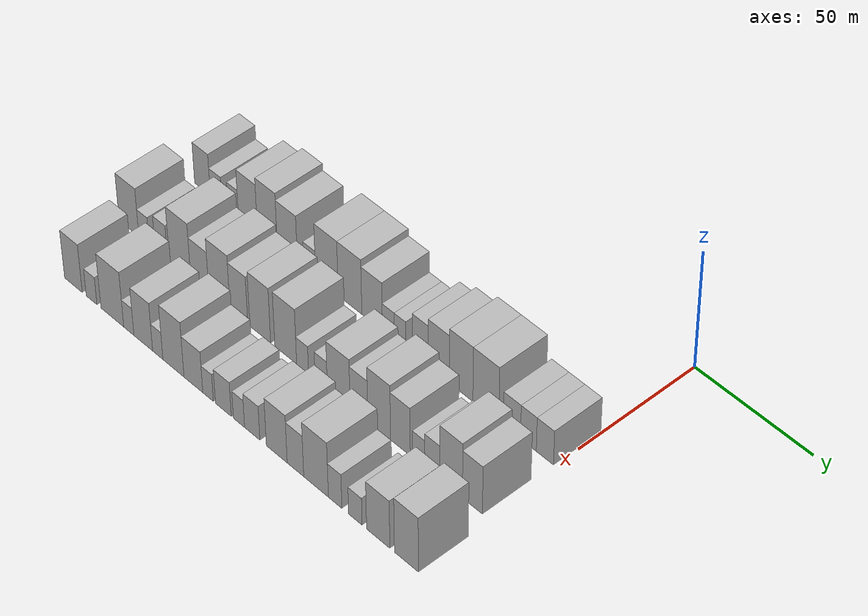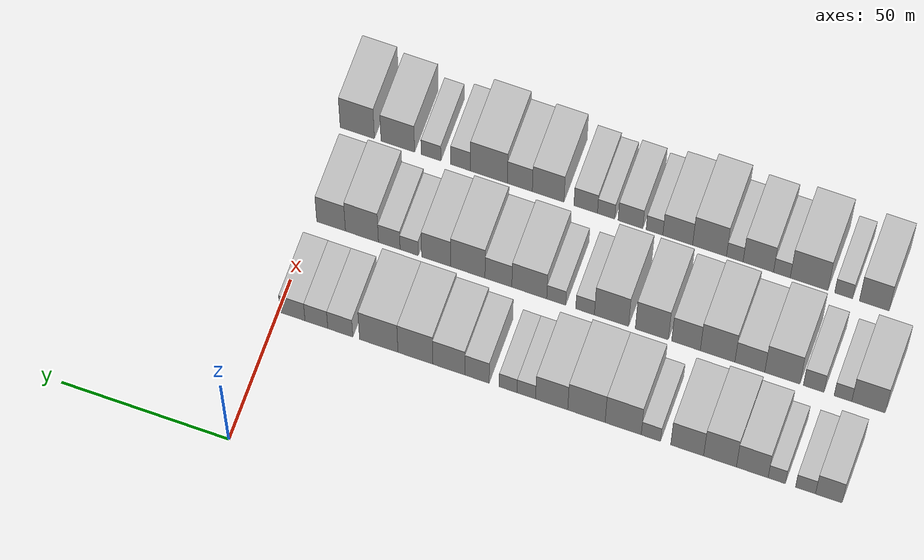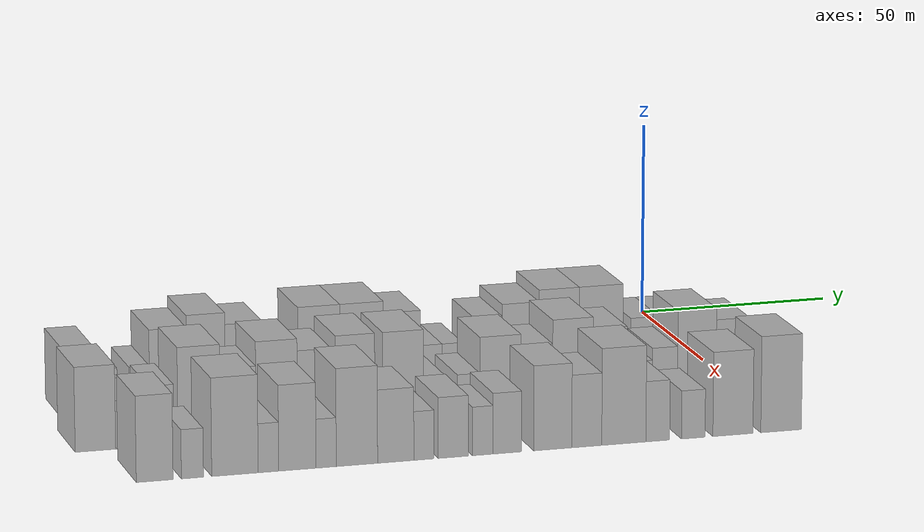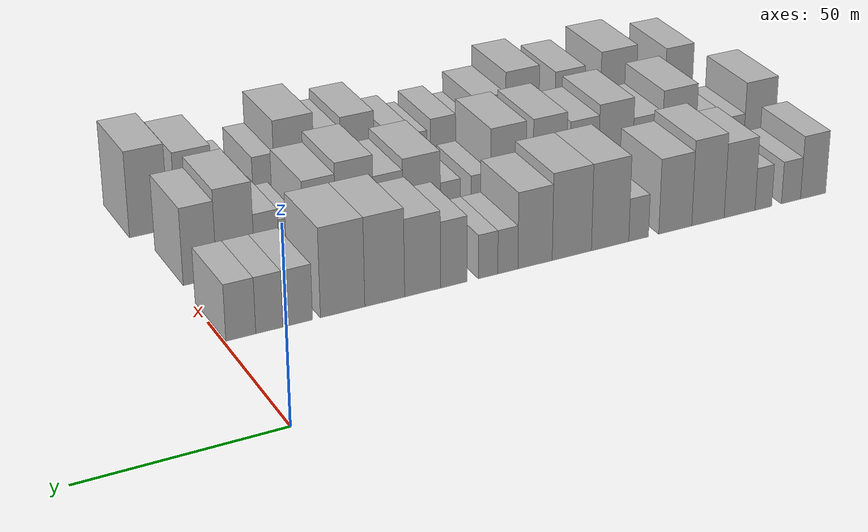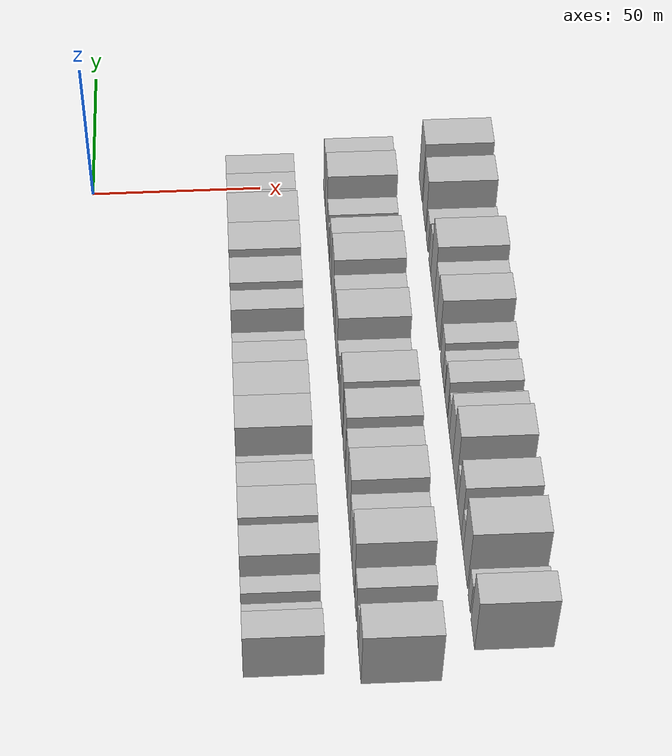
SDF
<sdf version="1.6">
 <world name="default">
  <model name="building_21">
   <static>1</static>
   <pose>50.0000 -163.6512 0 0.000000 0.000000 0.000000</pose>
   <link name="link">
    <pose>0 0 9.00 0 0 0</pose>
    <collision name="collision"><geometry><box><size>20.0000 7.8137 18.0000</size></box></geometry></collision>
    <visual name="visual">
     <cast_shadows>0</cast_shadows>
     <geometry><box><size>20.0000 7.8137 18.0000</size></box></geometry>
     <material>
      <script>
       <uri>model://HANNAS_wall/materials/scripts</uri>
       <uri>model://HANNAS_wall/materials/textures</uri>
       <name>vrc/HANNAS_wall</name>
      </script>
     </material>
    </visual>
   </link>
  </model>
  <model name="building_22">
   <static>1</static>
   <pose>50.0000 -156.8020 0 0.000000 0.000000 0.000000</pose>
   <link name="link">
    <pose>0 0 6.00 0 0 0</pose>
    <collision name="collision"><geometry><box><size>20.0000 5.8847 12.0000</size></box></geometry></collision>
    <visual name="visual">
     <cast_shadows>0</cast_shadows>
     <geometry><box><size>20.0000 5.8847 12.0000</size></box></geometry>
     <material>
      <script>
       <uri>model://HANNAS_wall/materials/scripts</uri>
       <uri>model://HANNAS_wall/materials/textures</uri>
       <name>vrc/HANNAS_wall</name>
      </script>
     </material>
    </visual>
   </link>
  </model>
  <model name="building_23">
   <static>1</static>
   <pose>50.0000 -148.3173 0 0.000000 0.000000 0.000000</pose>
   <link name="link">
    <pose>0 0 6.00 0 0 0</pose>
    <collision name="collision"><geometry><box><size>20.0000 5.0847 12.0000</size></box></geometry></collision>
    <visual name="visual">
     <cast_shadows>0</cast_shadows>
     <geometry><box><size>20.0000 5.0847 12.0000</size></box></geometry>
     <material>
      <script>
       <uri>model://HANNAS_wall/materials/scripts</uri>
       <uri>model://HANNAS_wall/materials/textures</uri>
       <name>vrc/HANNAS_wall</name>
      </script>
     </material>
    </visual>
   </link>
  </model>
  <model name="building_24">
   <static>1</static>
   <pose>50.0000 -141.1029 0 0.000000 0.000000 0.000000</pose>
   <link name="link">
    <pose>0 0 10.50 0 0 0</pose>
    <collision name="collision"><geometry><box><size>20.0000 9.3441 21.0000</size></box></geometry></collision>
    <visual name="visual">
     <cast_shadows>0</cast_shadows>
     <geometry><box><size>20.0000 9.3441 21.0000</size></box></geometry>
     <material>
      <script>
       <uri>model://HANNAS_wall/materials/scripts</uri>
       <uri>model://HANNAS_wall/materials/textures</uri>
       <name>vrc/HANNAS_wall</name>
      </script>
     </material>
    </visual>
   </link>
  </model>
  <model name="building_25">
   <static>1</static>
   <pose>50.0000 -131.5984 0 0.000000 0.000000 0.000000</pose>
   <link name="link">
    <pose>0 0 12.00 0 0 0</pose>
    <collision name="collision"><geometry><box><size>20.0000 9.6648 24.0000</size></box></geometry></collision>
    <visual name="visual">
     <cast_shadows>0</cast_shadows>
     <geometry><box><size>20.0000 9.6648 24.0000</size></box></geometry>
     <material>
      <script>
       <uri>model://HANNAS_wall/materials/scripts</uri>
       <uri>model://HANNAS_wall/materials/textures</uri>
       <name>vrc/HANNAS_wall</name>
      </script>
     </material>
    </visual>
   </link>
  </model>
  <model name="building_26">
   <static>1</static>
   <pose>50.0000 -121.9119 0 0.000000 0.000000 0.000000</pose>
   <link name="link">
    <pose>0 0 10.50 0 0 0</pose>
    <collision name="collision"><geometry><box><size>20.0000 9.7083 21.0000</size></box></geometry></collision>
    <visual name="visual">
     <cast_shadows>0</cast_shadows>
     <geometry><box><size>20.0000 9.7083 21.0000</size></box></geometry>
     <material>
      <script>
       <uri>model://HANNAS_wall/materials/scripts</uri>
       <uri>model://HANNAS_wall/materials/textures</uri>
       <name>vrc/HANNAS_wall</name>
      </script>
     </material>
    </visual>
   </link>
  </model>
  <model name="building_27">
   <static>1</static>
   <pose>50.0000 -111.1926 0 0.000000 0.000000 0.000000</pose>
   <link name="link">
    <pose>0 0 6.00 0 0 0</pose>
    <collision name="collision"><geometry><box><size>20.0000 5.7304 12.0000</size></box></geometry></collision>
    <visual name="visual">
     <cast_shadows>0</cast_shadows>
     <geometry><box><size>20.0000 5.7304 12.0000</size></box></geometry>
     <material>
      <script>
       <uri>model://HANNAS_wall/materials/scripts</uri>
       <uri>model://HANNAS_wall/materials/textures</uri>
       <name>vrc/HANNAS_wall</name>
      </script>
     </material>
    </visual>
   </link>
  </model>
  <model name="building_28">
   <static>1</static>
   <pose>50.0000 -102.9746 0 0.000000 0.000000 0.000000</pose>
   <link name="link">
    <pose>0 0 12.00 0 0 0</pose>
    <collision name="collision"><geometry><box><size>20.0000 10.7056 24.0000</size></box></geometry></collision>
    <visual name="visual">
     <cast_shadows>0</cast_shadows>
     <geometry><box><size>20.0000 10.7056 24.0000</size></box></geometry>
     <material>
      <script>
       <uri>model://HANNAS_wall/materials/scripts</uri>
       <uri>model://HANNAS_wall/materials/textures</uri>
       <name>vrc/HANNAS_wall</name>
      </script>
     </material>
    </visual>
   </link>
  </model>
  <model name="building_29">
   <static>1</static>
   <pose>50.0000 -92.0782 0 0.000000 0.000000 0.000000</pose>
   <link name="link">
    <pose>0 0 12.00 0 0 0</pose>
    <collision name="collision"><geometry><box><size>20.0000 11.0870 24.0000</size></box></geometry></collision>
    <visual name="visual">
     <cast_shadows>0</cast_shadows>
     <geometry><box><size>20.0000 11.0870 24.0000</size></box></geometry>
     <material>
      <script>
       <uri>model://HANNAS_wall/materials/scripts</uri>
       <uri>model://HANNAS_wall/materials/textures</uri>
       <name>vrc/HANNAS_wall</name>
      </script>
     </material>
    </visual>
   </link>
  </model>
  <model name="building_30">
   <static>1</static>
   <pose>50.0000 -81.7532 0 0.000000 0.000000 0.000000</pose>
   <link name="link">
    <pose>0 0 10.50 0 0 0</pose>
    <collision name="collision"><geometry><box><size>20.0000 9.5631 21.0000</size></box></geometry></collision>
    <visual name="visual">
     <cast_shadows>0</cast_shadows>
     <geometry><box><size>20.0000 9.5631 21.0000</size></box></geometry>
     <material>
      <script>
       <uri>model://HANNAS_wall/materials/scripts</uri>
       <uri>model://HANNAS_wall/materials/textures</uri>
       <name>vrc/HANNAS_wall</name>
      </script>
     </material>
    </visual>
   </link>
  </model>
  <model name="building_31">
   <static>1</static>
   <pose>50.0000 -74.2111 0 0.000000 0.000000 0.000000</pose>
   <link name="link">
    <pose>0 0 6.00 0 0 0</pose>
    <collision name="collision"><geometry><box><size>20.0000 5.5211 12.0000</size></box></geometry></collision>
    <visual name="visual">
     <cast_shadows>0</cast_shadows>
     <geometry><box><size>20.0000 5.5211 12.0000</size></box></geometry>
     <material>
      <script>
       <uri>model://HANNAS_wall/materials/scripts</uri>
       <uri>model://HANNAS_wall/materials/textures</uri>
       <name>vrc/HANNAS_wall</name>
      </script>
     </material>
    </visual>
   </link>
  </model>
  <model name="building_32">
   <static>1</static>
   <pose>50.0000 -68.8047 0 0.000000 0.000000 0.000000</pose>
   <link name="link">
    <pose>0 0 6.00 0 0 0</pose>
    <collision name="collision"><geometry><box><size>20.0000 5.2918 12.0000</size></box></geometry></collision>
    <visual name="visual">
     <cast_shadows>0</cast_shadows>
     <geometry><box><size>20.0000 5.2918 12.0000</size></box></geometry>
     <material>
      <script>
       <uri>model://HANNAS_wall/materials/scripts</uri>
       <uri>model://HANNAS_wall/materials/textures</uri>
       <name>vrc/HANNAS_wall</name>
      </script>
     </material>
    </visual>
   </link>
  </model>
  <model name="building_33">
   <static>1</static>
   <pose>50.0000 -59.5514 0 0.000000 0.000000 0.000000</pose>
   <link name="link">
    <pose>0 0 9.00 0 0 0</pose>
    <collision name="collision"><geometry><box><size>20.0000 7.2146 18.0000</size></box></geometry></collision>
    <visual name="visual">
     <cast_shadows>0</cast_shadows>
     <geometry><box><size>20.0000 7.2146 18.0000</size></box></geometry>
     <material>
      <script>
       <uri>model://HANNAS_wall/materials/scripts</uri>
       <uri>model://HANNAS_wall/materials/textures</uri>
       <name>vrc/HANNAS_wall</name>
      </script>
     </material>
    </visual>
   </link>
  </model>
  <model name="building_34">
   <static>1</static>
   <pose>50.0000 -51.1567 0 0.000000 0.000000 0.000000</pose>
   <link name="link">
    <pose>0 0 10.50 0 0 0</pose>
    <collision name="collision"><geometry><box><size>20.0000 9.5748 21.0000</size></box></geometry></collision>
    <visual name="visual">
     <cast_shadows>0</cast_shadows>
     <geometry><box><size>20.0000 9.5748 21.0000</size></box></geometry>
     <material>
      <script>
       <uri>model://HANNAS_wall/materials/scripts</uri>
       <uri>model://HANNAS_wall/materials/textures</uri>
       <name>vrc/HANNAS_wall</name>
      </script>
     </material>
    </visual>
   </link>
  </model>
  <model name="building_35">
   <static>1</static>
   <pose>50.0000 -41.1440 0 0.000000 0.000000 0.000000</pose>
   <link name="link">
    <pose>0 0 12.00 0 0 0</pose>
    <collision name="collision"><geometry><box><size>20.0000 10.4507 24.0000</size></box></geometry></collision>
    <visual name="visual">
     <cast_shadows>0</cast_shadows>
     <geometry><box><size>20.0000 10.4507 24.0000</size></box></geometry>
     <material>
      <script>
       <uri>model://HANNAS_wall/materials/scripts</uri>
       <uri>model://HANNAS_wall/materials/textures</uri>
       <name>vrc/HANNAS_wall</name>
      </script>
     </material>
    </visual>
   </link>
  </model>
  <model name="building_36">
   <static>1</static>
   <pose>50.0000 -30.1692 0 0.000000 0.000000 0.000000</pose>
   <link name="link">
    <pose>0 0 12.00 0 0 0</pose>
    <collision name="collision"><geometry><box><size>20.0000 11.4988 24.0000</size></box></geometry></collision>
    <visual name="visual">
     <cast_shadows>0</cast_shadows>
     <geometry><box><size>20.0000 11.4988 24.0000</size></box></geometry>
     <material>
      <script>
       <uri>model://HANNAS_wall/materials/scripts</uri>
       <uri>model://HANNAS_wall/materials/textures</uri>
       <name>vrc/HANNAS_wall</name>
      </script>
     </material>
    </visual>
   </link>
  </model>
  <model name="building_37">
   <static>1</static>
   <pose>50.0000 -18.6706 0 0.000000 0.000000 0.000000</pose>
   <link name="link">
    <pose>0 0 7.50 0 0 0</pose>
    <collision name="collision"><geometry><box><size>20.0000 7.4985 15.0000</size></box></geometry></collision>
    <visual name="visual">
     <cast_shadows>0</cast_shadows>
     <geometry><box><size>20.0000 7.4985 15.0000</size></box></geometry>
     <material>
      <script>
       <uri>model://HANNAS_wall/materials/scripts</uri>
       <uri>model://HANNAS_wall/materials/textures</uri>
       <name>vrc/HANNAS_wall</name>
      </script>
     </material>
    </visual>
   </link>
  </model>
  <model name="building_38">
   <static>1</static>
   <pose>50.0000 -11.4941 0 0.000000 0.000000 0.000000</pose>
   <link name="link">
    <pose>0 0 7.50 0 0 0</pose>
    <collision name="collision"><geometry><box><size>20.0000 6.8543 15.0000</size></box></geometry></collision>
    <visual name="visual">
     <cast_shadows>0</cast_shadows>
     <geometry><box><size>20.0000 6.8543 15.0000</size></box></geometry>
     <material>
      <script>
       <uri>model://HANNAS_wall/materials/scripts</uri>
       <uri>model://HANNAS_wall/materials/textures</uri>
       <name>vrc/HANNAS_wall</name>
      </script>
     </material>
    </visual>
   </link>
  </model>
  <model name="building_39">
   <static>1</static>
   <pose>50.0000 -4.3463 0 0.000000 0.000000 0.000000</pose>
   <link name="link">
    <pose>0 0 7.50 0 0 0</pose>
    <collision name="collision"><geometry><box><size>20.0000 7.4413 15.0000</size></box></geometry></collision>
    <visual name="visual">
     <cast_shadows>0</cast_shadows>
     <geometry><box><size>20.0000 7.4413 15.0000</size></box></geometry>
     <material>
      <script>
       <uri>model://HANNAS_wall/materials/scripts</uri>
       <uri>model://HANNAS_wall/materials/textures</uri>
       <name>vrc/HANNAS_wall</name>
      </script>
     </material>
    </visual>
   </link>
  </model>
  <model name="building_94">
   <static>1</static>
   <pose>79.0000 -165.7490 0 0.000000 0.000000 0.000000</pose>
   <link name="link">
    <pose>0 0 10.50 0 0 0</pose>
    <collision name="collision"><geometry><box><size>20.0000 9.8896 21.0000</size></box></geometry></collision>
    <visual name="visual">
     <cast_shadows>0</cast_shadows>
     <geometry><box><size>20.0000 9.8896 21.0000</size></box></geometry>
     <material>
      <script>
       <uri>model://HANNAS_wall/materials/scripts</uri>
       <uri>model://HANNAS_wall/materials/textures</uri>
       <name>vrc/HANNAS_wall</name>
      </script>
     </material>
    </visual>
   </link>
  </model>
  <model name="building_95">
   <static>1</static>
   <pose>79.0000 -158.2054 0 0.000000 0.000000 0.000000</pose>
   <link name="link">
    <pose>0 0 6.00 0 0 0</pose>
    <collision name="collision"><geometry><box><size>20.0000 5.1976 12.0000</size></box></geometry></collision>
    <visual name="visual">
     <cast_shadows>0</cast_shadows>
     <geometry><box><size>20.0000 5.1976 12.0000</size></box></geometry>
     <material>
      <script>
       <uri>model://HANNAS_wall/materials/scripts</uri>
       <uri>model://HANNAS_wall/materials/textures</uri>
       <name>vrc/HANNAS_wall</name>
      </script>
     </material>
    </visual>
   </link>
  </model>
  <model name="building_96">
   <static>1</static>
   <pose>79.0000 -149.5529 0 0.000000 0.000000 0.000000</pose>
   <link name="link">
    <pose>0 0 7.50 0 0 0</pose>
    <collision name="collision"><geometry><box><size>20.0000 6.1075 15.0000</size></box></geometry></collision>
    <visual name="visual">
     <cast_shadows>0</cast_shadows>
     <geometry><box><size>20.0000 6.1075 15.0000</size></box></geometry>
     <material>
      <script>
       <uri>model://HANNAS_wall/materials/scripts</uri>
       <uri>model://HANNAS_wall/materials/textures</uri>
       <name>vrc/HANNAS_wall</name>
      </script>
     </material>
    </visual>
   </link>
  </model>
  <model name="building_97">
   <static>1</static>
   <pose>79.0000 -140.2811 0 0.000000 0.000000 0.000000</pose>
   <link name="link">
    <pose>0 0 12.00 0 0 0</pose>
    <collision name="collision"><geometry><box><size>20.0000 10.4362 24.0000</size></box></geometry></collision>
    <visual name="visual">
     <cast_shadows>0</cast_shadows>
     <geometry><box><size>20.0000 10.4362 24.0000</size></box></geometry>
     <material>
      <script>
       <uri>model://HANNAS_wall/materials/scripts</uri>
       <uri>model://HANNAS_wall/materials/textures</uri>
       <name>vrc/HANNAS_wall</name>
      </script>
     </material>
    </visual>
   </link>
  </model>
  <model name="building_98">
   <static>1</static>
   <pose>79.0000 -130.6307 0 0.000000 0.000000 0.000000</pose>
   <link name="link">
    <pose>0 0 9.00 0 0 0</pose>
    <collision name="collision"><geometry><box><size>20.0000 8.8647 18.0000</size></box></geometry></collision>
    <visual name="visual">
     <cast_shadows>0</cast_shadows>
     <geometry><box><size>20.0000 8.8647 18.0000</size></box></geometry>
     <material>
      <script>
       <uri>model://HANNAS_wall/materials/scripts</uri>
       <uri>model://HANNAS_wall/materials/textures</uri>
       <name>vrc/HANNAS_wall</name>
      </script>
     </material>
    </visual>
   </link>
  </model>
  <model name="building_99">
   <static>1</static>
   <pose>79.0000 -121.0597 0 0.000000 0.000000 0.000000</pose>
   <link name="link">
    <pose>0 0 12.00 0 0 0</pose>
    <collision name="collision"><geometry><box><size>20.0000 10.2773 24.0000</size></box></geometry></collision>
    <visual name="visual">
     <cast_shadows>0</cast_shadows>
     <geometry><box><size>20.0000 10.2773 24.0000</size></box></geometry>
     <material>
      <script>
       <uri>model://HANNAS_wall/materials/scripts</uri>
       <uri>model://HANNAS_wall/materials/textures</uri>
       <name>vrc/HANNAS_wall</name>
      </script>
     </material>
    </visual>
   </link>
  </model>
  <model name="building_100">
   <static>1</static>
   <pose>79.0000 -111.6714 0 0.000000 0.000000 0.000000</pose>
   <link name="link">
    <pose>0 0 10.50 0 0 0</pose>
    <collision name="collision"><geometry><box><size>20.0000 8.4993 21.0000</size></box></geometry></collision>
    <visual name="visual">
     <cast_shadows>0</cast_shadows>
     <geometry><box><size>20.0000 8.4993 21.0000</size></box></geometry>
     <material>
      <script>
       <uri>model://HANNAS_wall/materials/scripts</uri>
       <uri>model://HANNAS_wall/materials/textures</uri>
       <name>vrc/HANNAS_wall</name>
      </script>
     </material>
    </visual>
   </link>
  </model>
  <model name="building_101">
   <static>1</static>
   <pose>79.0000 -101.5051 0 0.000000 0.000000 0.000000</pose>
   <link name="link">
    <pose>0 0 12.00 0 0 0</pose>
    <collision name="collision"><geometry><box><size>20.0000 9.8333 24.0000</size></box></geometry></collision>
    <visual name="visual">
     <cast_shadows>0</cast_shadows>
     <geometry><box><size>20.0000 9.8333 24.0000</size></box></geometry>
     <material>
      <script>
       <uri>model://HANNAS_wall/materials/scripts</uri>
       <uri>model://HANNAS_wall/materials/textures</uri>
       <name>vrc/HANNAS_wall</name>
      </script>
     </material>
    </visual>
   </link>
  </model>
  <model name="building_102">
   <static>1</static>
   <pose>79.0000 -89.4854 0 0.000000 0.000000 0.000000</pose>
   <link name="link">
    <pose>0 0 12.00 0 0 0</pose>
    <collision name="collision"><geometry><box><size>20.0000 10.2059 24.0000</size></box></geometry></collision>
    <visual name="visual">
     <cast_shadows>0</cast_shadows>
     <geometry><box><size>20.0000 10.2059 24.0000</size></box></geometry>
     <material>
      <script>
       <uri>model://HANNAS_wall/materials/scripts</uri>
       <uri>model://HANNAS_wall/materials/textures</uri>
       <name>vrc/HANNAS_wall</name>
      </script>
     </material>
    </visual>
   </link>
  </model>
  <model name="building_103">
   <static>1</static>
   <pose>79.0000 -81.5985 0 0.000000 0.000000 0.000000</pose>
   <link name="link">
    <pose>0 0 6.00 0 0 0</pose>
    <collision name="collision"><geometry><box><size>20.0000 5.5680 12.0000</size></box></geometry></collision>
    <visual name="visual">
     <cast_shadows>0</cast_shadows>
     <geometry><box><size>20.0000 5.5680 12.0000</size></box></geometry>
     <material>
      <script>
       <uri>model://HANNAS_wall/materials/scripts</uri>
       <uri>model://HANNAS_wall/materials/textures</uri>
       <name>vrc/HANNAS_wall</name>
      </script>
     </material>
    </visual>
   </link>
  </model>
  <model name="building_104">
   <static>1</static>
   <pose>79.0000 -72.9741 0 0.000000 0.000000 0.000000</pose>
   <link name="link">
    <pose>0 0 6.00 0 0 0</pose>
    <collision name="collision"><geometry><box><size>20.0000 5.6808 12.0000</size></box></geometry></collision>
    <visual name="visual">
     <cast_shadows>0</cast_shadows>
     <geometry><box><size>20.0000 5.6808 12.0000</size></box></geometry>
     <material>
      <script>
       <uri>model://HANNAS_wall/materials/scripts</uri>
       <uri>model://HANNAS_wall/materials/textures</uri>
       <name>vrc/HANNAS_wall</name>
      </script>
     </material>
    </visual>
   </link>
  </model>
  <model name="building_105">
   <static>1</static>
   <pose>79.0000 -64.9099 0 0.000000 0.000000 0.000000</pose>
   <link name="link">
    <pose>0 0 10.50 0 0 0</pose>
    <collision name="collision"><geometry><box><size>20.0000 10.4476 21.0000</size></box></geometry></collision>
    <visual name="visual">
     <cast_shadows>0</cast_shadows>
     <geometry><box><size>20.0000 10.4476 21.0000</size></box></geometry>
     <material>
      <script>
       <uri>model://HANNAS_wall/materials/scripts</uri>
       <uri>model://HANNAS_wall/materials/textures</uri>
       <name>vrc/HANNAS_wall</name>
      </script>
     </material>
    </visual>
   </link>
  </model>
  <model name="building_106">
   <static>1</static>
   <pose>79.0000 -55.6580 0 0.000000 0.000000 0.000000</pose>
   <link name="link">
    <pose>0 0 9.00 0 0 0</pose>
    <collision name="collision"><geometry><box><size>20.0000 8.0562 18.0000</size></box></geometry></collision>
    <visual name="visual">
     <cast_shadows>0</cast_shadows>
     <geometry><box><size>20.0000 8.0562 18.0000</size></box></geometry>
     <material>
      <script>
       <uri>model://HANNAS_wall/materials/scripts</uri>
       <uri>model://HANNAS_wall/materials/textures</uri>
       <name>vrc/HANNAS_wall</name>
      </script>
     </material>
    </visual>
   </link>
  </model>
  <model name="building_107">
   <static>1</static>
   <pose>79.0000 -46.4918 0 0.000000 0.000000 0.000000</pose>
   <link name="link">
    <pose>0 0 12.00 0 0 0</pose>
    <collision name="collision"><geometry><box><size>20.0000 10.2764 24.0000</size></box></geometry></collision>
    <visual name="visual">
     <cast_shadows>0</cast_shadows>
     <geometry><box><size>20.0000 10.2764 24.0000</size></box></geometry>
     <material>
      <script>
       <uri>model://HANNAS_wall/materials/scripts</uri>
       <uri>model://HANNAS_wall/materials/textures</uri>
       <name>vrc/HANNAS_wall</name>
      </script>
     </material>
    </visual>
   </link>
  </model>
  <model name="building_108">
   <static>1</static>
   <pose>79.0000 -36.9700 0 0.000000 0.000000 0.000000</pose>
   <link name="link">
    <pose>0 0 10.50 0 0 0</pose>
    <collision name="collision"><geometry><box><size>20.0000 8.7671 21.0000</size></box></geometry></collision>
    <visual name="visual">
     <cast_shadows>0</cast_shadows>
     <geometry><box><size>20.0000 8.7671 21.0000</size></box></geometry>
     <material>
      <script>
       <uri>model://HANNAS_wall/materials/scripts</uri>
       <uri>model://HANNAS_wall/materials/textures</uri>
       <name>vrc/HANNAS_wall</name>
      </script>
     </material>
    </visual>
   </link>
  </model>
  <model name="building_109">
   <static>1</static>
   <pose>79.0000 -28.8429 0 0.000000 0.000000 0.000000</pose>
   <link name="link">
    <pose>0 0 6.00 0 0 0</pose>
    <collision name="collision"><geometry><box><size>20.0000 5.4872 12.0000</size></box></geometry></collision>
    <visual name="visual">
     <cast_shadows>0</cast_shadows>
     <geometry><box><size>20.0000 5.4872 12.0000</size></box></geometry>
     <material>
      <script>
       <uri>model://HANNAS_wall/materials/scripts</uri>
       <uri>model://HANNAS_wall/materials/textures</uri>
       <name>vrc/HANNAS_wall</name>
      </script>
     </material>
    </visual>
   </link>
  </model>
  <model name="building_110">
   <static>1</static>
   <pose>79.0000 -22.8388 0 0.000000 0.000000 0.000000</pose>
   <link name="link">
    <pose>0 0 7.50 0 0 0</pose>
    <collision name="collision"><geometry><box><size>20.0000 6.5210 15.0000</size></box></geometry></collision>
    <visual name="visual">
     <cast_shadows>0</cast_shadows>
     <geometry><box><size>20.0000 6.5210 15.0000</size></box></geometry>
     <material>
      <script>
       <uri>model://HANNAS_wall/materials/scripts</uri>
       <uri>model://HANNAS_wall/materials/textures</uri>
       <name>vrc/HANNAS_wall</name>
      </script>
     </material>
    </visual>
   </link>
  </model>
  <model name="building_111">
   <static>1</static>
   <pose>79.0000 -14.6055 0 0.000000 0.000000 0.000000</pose>
   <link name="link">
    <pose>0 0 12.00 0 0 0</pose>
    <collision name="collision"><geometry><box><size>20.0000 9.9457 24.0000</size></box></geometry></collision>
    <visual name="visual">
     <cast_shadows>0</cast_shadows>
     <geometry><box><size>20.0000 9.9457 24.0000</size></box></geometry>
     <material>
      <script>
       <uri>model://HANNAS_wall/materials/scripts</uri>
       <uri>model://HANNAS_wall/materials/textures</uri>
       <name>vrc/HANNAS_wall</name>
      </script>
     </material>
    </visual>
   </link>
  </model>
  <model name="building_112">
   <static>1</static>
   <pose>79.0000 -5.3071 0 0.000000 0.000000 0.000000</pose>
   <link name="link">
    <pose>0 0 10.50 0 0 0</pose>
    <collision name="collision"><geometry><box><size>20.0000 8.6511 21.0000</size></box></geometry></collision>
    <visual name="visual">
     <cast_shadows>0</cast_shadows>
     <geometry><box><size>20.0000 8.6511 21.0000</size></box></geometry>
     <material>
      <script>
       <uri>model://HANNAS_wall/materials/scripts</uri>
       <uri>model://HANNAS_wall/materials/textures</uri>
       <name>vrc/HANNAS_wall</name>
      </script>
     </material>
    </visual>
   </link>
  </model>
  <model name="building_169">
   <static>1</static>
   <pose>108.0000 -157.9310 0 0.000000 0.000000 0.000000</pose>
   <link name="link">
    <pose>0 0 10.50 0 0 0</pose>
    <collision name="collision"><geometry><box><size>20.0000 8.8424 21.0000</size></box></geometry></collision>
    <visual name="visual">
     <cast_shadows>0</cast_shadows>
     <geometry><box><size>20.0000 8.8424 21.0000</size></box></geometry>
     <material>
      <script>
       <uri>model://HANNAS_wall/materials/scripts</uri>
       <uri>model://HANNAS_wall/materials/textures</uri>
       <name>vrc/HANNAS_wall</name>
      </script>
     </material>
    </visual>
   </link>
  </model>
  <model name="building_170">
   <static>1</static>
   <pose>108.0000 -148.8468 0 0.000000 0.000000 0.000000</pose>
   <link name="link">
    <pose>0 0 6.00 0 0 0</pose>
    <collision name="collision"><geometry><box><size>20.0000 5.3260 12.0000</size></box></geometry></collision>
    <visual name="visual">
     <cast_shadows>0</cast_shadows>
     <geometry><box><size>20.0000 5.3260 12.0000</size></box></geometry>
     <material>
      <script>
       <uri>model://HANNAS_wall/materials/scripts</uri>
       <uri>model://HANNAS_wall/materials/textures</uri>
       <name>vrc/HANNAS_wall</name>
      </script>
     </material>
    </visual>
   </link>
  </model>
  <model name="building_171">
   <static>1</static>
   <pose>108.0000 -138.5633 0 0.000000 0.000000 0.000000</pose>
   <link name="link">
    <pose>0 0 12.00 0 0 0</pose>
    <collision name="collision"><geometry><box><size>20.0000 11.2412 24.0000</size></box></geometry></collision>
    <visual name="visual">
     <cast_shadows>0</cast_shadows>
     <geometry><box><size>20.0000 11.2412 24.0000</size></box></geometry>
     <material>
      <script>
       <uri>model://HANNAS_wall/materials/scripts</uri>
       <uri>model://HANNAS_wall/materials/textures</uri>
       <name>vrc/HANNAS_wall</name>
      </script>
     </material>
    </visual>
   </link>
  </model>
  <model name="building_172">
   <static>1</static>
   <pose>108.0000 -130.4497 0 0.000000 0.000000 0.000000</pose>
   <link name="link">
    <pose>0 0 6.00 0 0 0</pose>
    <collision name="collision"><geometry><box><size>20.0000 4.9860 12.0000</size></box></geometry></collision>
    <visual name="visual">
     <cast_shadows>0</cast_shadows>
     <geometry><box><size>20.0000 4.9860 12.0000</size></box></geometry>
     <material>
      <script>
       <uri>model://HANNAS_wall/materials/scripts</uri>
       <uri>model://HANNAS_wall/materials/textures</uri>
       <name>vrc/HANNAS_wall</name>
      </script>
     </material>
    </visual>
   </link>
  </model>
  <model name="building_173">
   <static>1</static>
   <pose>108.0000 -123.4048 0 0.000000 0.000000 0.000000</pose>
   <link name="link">
    <pose>0 0 10.50 0 0 0</pose>
    <collision name="collision"><geometry><box><size>20.0000 9.1038 21.0000</size></box></geometry></collision>
    <visual name="visual">
     <cast_shadows>0</cast_shadows>
     <geometry><box><size>20.0000 9.1038 21.0000</size></box></geometry>
     <material>
      <script>
       <uri>model://HANNAS_wall/materials/scripts</uri>
       <uri>model://HANNAS_wall/materials/textures</uri>
       <name>vrc/HANNAS_wall</name>
      </script>
     </material>
    </visual>
   </link>
  </model>
  <model name="building_174">
   <static>1</static>
   <pose>108.0000 -116.3796 0 0.000000 0.000000 0.000000</pose>
   <link name="link">
    <pose>0 0 6.00 0 0 0</pose>
    <collision name="collision"><geometry><box><size>20.0000 4.9465 12.0000</size></box></geometry></collision>
    <visual name="visual">
     <cast_shadows>0</cast_shadows>
     <geometry><box><size>20.0000 4.9465 12.0000</size></box></geometry>
     <material>
      <script>
       <uri>model://HANNAS_wall/materials/scripts</uri>
       <uri>model://HANNAS_wall/materials/textures</uri>
       <name>vrc/HANNAS_wall</name>
      </script>
     </material>
    </visual>
   </link>
  </model>
  <model name="building_175">
   <static>1</static>
   <pose>108.0000 -108.8435 0 0.000000 0.000000 0.000000</pose>
   <link name="link">
    <pose>0 0 12.00 0 0 0</pose>
    <collision name="collision"><geometry><box><size>20.0000 10.1258 24.0000</size></box></geometry></collision>
    <visual name="visual">
     <cast_shadows>0</cast_shadows>
     <geometry><box><size>20.0000 10.1258 24.0000</size></box></geometry>
     <material>
      <script>
       <uri>model://HANNAS_wall/materials/scripts</uri>
       <uri>model://HANNAS_wall/materials/textures</uri>
       <name>vrc/HANNAS_wall</name>
      </script>
     </material>
    </visual>
   </link>
  </model>
  <model name="building_176">
   <static>1</static>
   <pose>108.0000 -99.3198 0 0.000000 0.000000 0.000000</pose>
   <link name="link">
    <pose>0 0 9.00 0 0 0</pose>
    <collision name="collision"><geometry><box><size>20.0000 8.9215 18.0000</size></box></geometry></collision>
    <visual name="visual">
     <cast_shadows>0</cast_shadows>
     <geometry><box><size>20.0000 8.9215 18.0000</size></box></geometry>
     <material>
      <script>
       <uri>model://HANNAS_wall/materials/scripts</uri>
       <uri>model://HANNAS_wall/materials/textures</uri>
       <name>vrc/HANNAS_wall</name>
      </script>
     </material>
    </visual>
   </link>
  </model>
  <model name="building_177">
   <static>1</static>
   <pose>108.0000 -92.3599 0 0.000000 0.000000 0.000000</pose>
   <link name="link">
    <pose>0 0 6.00 0 0 0</pose>
    <collision name="collision"><geometry><box><size>20.0000 4.9983 12.0000</size></box></geometry></collision>
    <visual name="visual">
     <cast_shadows>0</cast_shadows>
     <geometry><box><size>20.0000 4.9983 12.0000</size></box></geometry>
     <material>
      <script>
       <uri>model://HANNAS_wall/materials/scripts</uri>
       <uri>model://HANNAS_wall/materials/textures</uri>
       <name>vrc/HANNAS_wall</name>
      </script>
     </material>
    </visual>
   </link>
  </model>
  <model name="building_178">
   <static>1</static>
   <pose>108.0000 -85.1469 0 0.000000 0.000000 0.000000</pose>
   <link name="link">
    <pose>0 0 7.50 0 0 0</pose>
    <collision name="collision"><geometry><box><size>20.0000 7.4277 15.0000</size></box></geometry></collision>
    <visual name="visual">
     <cast_shadows>0</cast_shadows>
     <geometry><box><size>20.0000 7.4277 15.0000</size></box></geometry>
     <material>
      <script>
       <uri>model://HANNAS_wall/materials/scripts</uri>
       <uri>model://HANNAS_wall/materials/textures</uri>
       <name>vrc/HANNAS_wall</name>
      </script>
     </material>
    </visual>
   </link>
  </model>
  <model name="building_179">
   <static>1</static>
   <pose>108.0000 -77.8343 0 0.000000 0.000000 0.000000</pose>
   <link name="link">
    <pose>0 0 6.00 0 0 0</pose>
    <collision name="collision"><geometry><box><size>20.0000 5.1975 12.0000</size></box></geometry></collision>
    <visual name="visual">
     <cast_shadows>0</cast_shadows>
     <geometry><box><size>20.0000 5.1975 12.0000</size></box></geometry>
     <material>
      <script>
       <uri>model://HANNAS_wall/materials/scripts</uri>
       <uri>model://HANNAS_wall/materials/textures</uri>
       <name>vrc/HANNAS_wall</name>
      </script>
     </material>
    </visual>
   </link>
  </model>
  <model name="building_180">
   <static>1</static>
   <pose>108.0000 -71.6978 0 0.000000 0.000000 0.000000</pose>
   <link name="link">
    <pose>0 0 7.50 0 0 0</pose>
    <collision name="collision"><geometry><box><size>20.0000 7.0755 15.0000</size></box></geometry></collision>
    <visual name="visual">
     <cast_shadows>0</cast_shadows>
     <geometry><box><size>20.0000 7.0755 15.0000</size></box></geometry>
     <material>
      <script>
       <uri>model://HANNAS_wall/materials/scripts</uri>
       <uri>model://HANNAS_wall/materials/textures</uri>
       <name>vrc/HANNAS_wall</name>
      </script>
     </material>
    </visual>
   </link>
  </model>
  <model name="building_181">
   <static>1</static>
   <pose>108.0000 -60.3889 0 0.000000 0.000000 0.000000</pose>
   <link name="link">
    <pose>0 0 10.50 0 0 0</pose>
    <collision name="collision"><geometry><box><size>20.0000 9.5421 21.0000</size></box></geometry></collision>
    <visual name="visual">
     <cast_shadows>0</cast_shadows>
     <geometry><box><size>20.0000 9.5421 21.0000</size></box></geometry>
     <material>
      <script>
       <uri>model://HANNAS_wall/materials/scripts</uri>
       <uri>model://HANNAS_wall/materials/textures</uri>
       <name>vrc/HANNAS_wall</name>
      </script>
     </material>
    </visual>
   </link>
  </model>
  <model name="building_182">
   <static>1</static>
   <pose>108.0000 -51.8622 0 0.000000 0.000000 0.000000</pose>
   <link name="link">
    <pose>0 0 9.00 0 0 0</pose>
    <collision name="collision"><geometry><box><size>20.0000 7.5113 18.0000</size></box></geometry></collision>
    <visual name="visual">
     <cast_shadows>0</cast_shadows>
     <geometry><box><size>20.0000 7.5113 18.0000</size></box></geometry>
     <material>
      <script>
       <uri>model://HANNAS_wall/materials/scripts</uri>
       <uri>model://HANNAS_wall/materials/textures</uri>
       <name>vrc/HANNAS_wall</name>
      </script>
     </material>
    </visual>
   </link>
  </model>
  <model name="building_183">
   <static>1</static>
   <pose>108.0000 -42.5542 0 0.000000 0.000000 0.000000</pose>
   <link name="link">
    <pose>0 0 12.00 0 0 0</pose>
    <collision name="collision"><geometry><box><size>20.0000 11.1047 24.0000</size></box></geometry></collision>
    <visual name="visual">
     <cast_shadows>0</cast_shadows>
     <geometry><box><size>20.0000 11.1047 24.0000</size></box></geometry>
     <material>
      <script>
       <uri>model://HANNAS_wall/materials/scripts</uri>
       <uri>model://HANNAS_wall/materials/textures</uri>
       <name>vrc/HANNAS_wall</name>
      </script>
     </material>
    </visual>
   </link>
  </model>
  <model name="building_184">
   <static>1</static>
   <pose>108.0000 -34.0006 0 0.000000 0.000000 0.000000</pose>
   <link name="link">
    <pose>0 0 7.50 0 0 0</pose>
    <collision name="collision"><geometry><box><size>20.0000 6.0025 15.0000</size></box></geometry></collision>
    <visual name="visual">
     <cast_shadows>0</cast_shadows>
     <geometry><box><size>20.0000 6.0025 15.0000</size></box></geometry>
     <material>
      <script>
       <uri>model://HANNAS_wall/materials/scripts</uri>
       <uri>model://HANNAS_wall/materials/textures</uri>
       <name>vrc/HANNAS_wall</name>
      </script>
     </material>
    </visual>
   </link>
  </model>
  <model name="building_185">
   <static>1</static>
   <pose>108.0000 -25.0249 0 0.000000 0.000000 0.000000</pose>
   <link name="link">
    <pose>0 0 6.00 0 0 0</pose>
    <collision name="collision"><geometry><box><size>20.0000 5.9489 12.0000</size></box></geometry></collision>
    <visual name="visual">
     <cast_shadows>0</cast_shadows>
     <geometry><box><size>20.0000 5.9489 12.0000</size></box></geometry>
     <material>
      <script>
       <uri>model://HANNAS_wall/materials/scripts</uri>
       <uri>model://HANNAS_wall/materials/textures</uri>
       <name>vrc/HANNAS_wall</name>
      </script>
     </material>
    </visual>
   </link>
  </model>
  <model name="building_186">
   <static>1</static>
   <pose>108.0000 -14.9558 0 0.000000 0.000000 0.000000</pose>
   <link name="link">
    <pose>0 0 10.50 0 0 0</pose>
    <collision name="collision"><geometry><box><size>20.0000 10.1894 21.0000</size></box></geometry></collision>
    <visual name="visual">
     <cast_shadows>0</cast_shadows>
     <geometry><box><size>20.0000 10.1894 21.0000</size></box></geometry>
     <material>
      <script>
       <uri>model://HANNAS_wall/materials/scripts</uri>
       <uri>model://HANNAS_wall/materials/textures</uri>
       <name>vrc/HANNAS_wall</name>
      </script>
     </material>
    </visual>
   </link>
  </model>
  <model name="building_187">
   <static>1</static>
   <pose>108.0000 -2.6671 0 0.000000 0.000000 0.000000</pose>
   <link name="link">
    <pose>0 0 12.00 0 0 0</pose>
    <collision name="collision"><geometry><box><size>20.0000 10.3879 24.0000</size></box></geometry></collision>
    <visual name="visual">
     <cast_shadows>0</cast_shadows>
     <geometry><box><size>20.0000 10.3879 24.0000</size></box></geometry>
     <material>
      <script>
       <uri>model://HANNAS_wall/materials/scripts</uri>
       <uri>model://HANNAS_wall/materials/textures</uri>
       <name>vrc/HANNAS_wall</name>
      </script>
     </material>
    </visual>
   </link>
  </model>
 </world>
</sdf>
